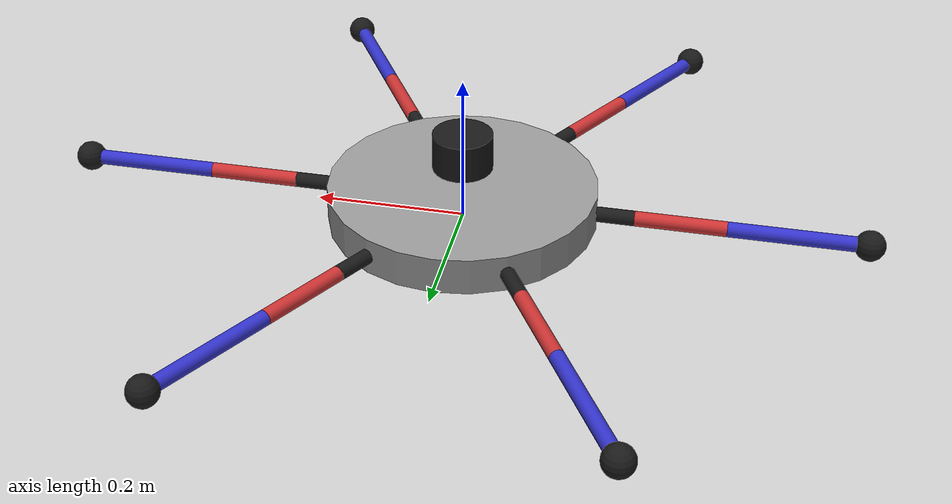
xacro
<?xml version="1.0"?>
<robot xmlns:xacro="http://www.ros.org/wiki/xacro" name="hexapod">

  <xacro:property name="base_radius" value="0.18"/>
  <xacro:property name="base_height" value="0.05"/>
  <xacro:property name="hip_length" value="0.05"/>
  <xacro:property name="femur_length" value="0.12"/>
  <xacro:property name="tibia_length" value="0.18"/>
  <xacro:property name="leg_radius" value="0.01"/>
  <xacro:property name="joint_lower_limit" value="-1.57"/>
  <xacro:property name="joint_upper_limit" value="1.57"/>

  <!-- Base Link -->
  <link name="base_link">
    <inertial>
      <origin xyz="0 0 0" rpy="0 0 0"/>
      <mass value="3.0"/>
      <inertia ixx="0.02" ixy="0.0" ixz="0.0" iyy="0.02" iyz="0.0" izz="0.02"/>
    </inertial>
    <visual>
      <origin xyz="0 0 ${base_height/2}" rpy="0 0 0"/>
      <geometry>
        <cylinder radius="${base_radius}" length="${base_height}"/>
      </geometry>
      <material name="gray">
        <color rgba="0.6 0.6 0.6 1.0"/>
      </material>
    </visual>
    <collision>
      <origin xyz="0 0 ${base_height/2}" rpy="0 0 0"/>
      <geometry>
        <cylinder radius="${base_radius}" length="${base_height}"/>
      </geometry>
    </collision>
  </link>

  <!-- IMU Sensor -->
  <link name="imu_link">
    <inertial>
      <mass value="0.001"/>
      <inertia ixx="1e-6" ixy="0" ixz="0" iyy="1e-6" iyz="0" izz="1e-6"/>
    </inertial>
  </link>

  <joint name="imu_joint" type="fixed">
    <origin xyz="0 0 0.07" rpy="0 0 0"/>
    <parent link="base_link"/>
    <child link="imu_link"/>
  </joint>

  <!-- LiDAR Sensor -->
  <link name="lidar_link">
    <inertial>
      <mass value="0.05"/>
      <inertia ixx="1e-4" ixy="0" ixz="0" iyy="1e-4" iyz="0" izz="1e-4"/>
    </inertial>
    <visual>
      <origin xyz="0 0 0" rpy="0 0 0"/>
      <geometry>
        <cylinder radius="0.04" length="0.05"/>
      </geometry>
      <material name="black">
        <color rgba="0.1 0.1 0.1 1.0"/>
      </material>
    </visual>
    <collision>
      <origin xyz="0 0 0" rpy="0 0 0"/>
      <geometry>
        <cylinder radius="0.04" length="0.05"/>
      </geometry>
    </collision>
  </link>

  <joint name="lidar_joint" type="fixed">
    <origin xyz="0 0 0.1" rpy="0 0 0"/>
    <parent link="base_link"/>
    <child link="lidar_link"/>
  </joint>

  <!-- LEG MACRO -->
  <xacro:macro name="leg" params="leg_name hx hy angle">

    <link name="${leg_name}_hip_link">
      <inertial>
        <origin xyz="${hip_length/2} 0 0" rpy="0 1.5708 0"/>
        <mass value="0.05"/>
        <inertia ixx="1e-4" ixy="0" ixz="0" iyy="1e-4" iyz="0" izz="1e-4"/>
      </inertial>
      <visual>
        <origin xyz="${hip_length/2} 0 0" rpy="0 1.5708 0"/>
        <geometry><cylinder radius="${leg_radius}" length="${hip_length}"/></geometry>
        <material name="black"><color rgba="0.1 0.1 0.1 1.0"/></material>
      </visual>
      <collision>
        <origin xyz="${hip_length/2} 0 0" rpy="0 1.5708 0"/>
        <geometry><cylinder radius="${leg_radius}" length="${hip_length}"/></geometry>
      </collision>
    </link>

    <joint name="${leg_name}_hip_joint" type="revolute">
      <origin xyz="${hx} ${hy} ${base_height/2}" rpy="0 0 ${angle}"/>
      <parent link="base_link"/>
      <child link="${leg_name}_hip_link"/>
      <axis xyz="0 0 1"/>
      <limit lower="${joint_lower_limit}" upper="${joint_upper_limit}" effort="10" velocity="4"/>
    </joint>

    <link name="${leg_name}_femur_link">
      <inertial>
        <origin xyz="${femur_length/2} 0 0" rpy="0 1.5708 0"/>
        <mass value="0.08"/>
        <inertia ixx="1e-4" ixy="0" ixz="0" iyy="1e-4" iyz="0" izz="1e-4"/>
      </inertial>
      <visual>
        <origin xyz="${femur_length/2} 0 0" rpy="0 1.5708 0"/>
        <geometry><cylinder radius="${leg_radius}" length="${femur_length}"/></geometry>
        <material name="red"><color rgba="0.8 0.2 0.2 1.0"/></material>
      </visual>
      <collision>
        <origin xyz="${femur_length/2} 0 0" rpy="0 1.5708 0"/>
        <geometry><cylinder radius="${leg_radius}" length="${femur_length}"/></geometry>
      </collision>
    </link>

    <joint name="${leg_name}_femur_joint" type="revolute">
      <origin xyz="${hip_length} 0 0" rpy="0 0 0"/>
      <parent link="${leg_name}_hip_link"/>
      <child link="${leg_name}_femur_link"/>
      <axis xyz="0 1 0"/>
      <limit lower="${joint_lower_limit}" upper="${joint_upper_limit}" effort="10" velocity="4"/>
    </joint>

    <link name="${leg_name}_tibia_link">
      <inertial>
        <origin xyz="${tibia_length/2} 0 0" rpy="0 1.5708 0"/>
        <mass value="0.06"/>
        <inertia ixx="1e-4" ixy="0" ixz="0" iyy="1e-4" iyz="0" izz="1e-4"/>
      </inertial>
      <visual>
        <origin xyz="${tibia_length/2} 0 0" rpy="0 1.5708 0"/>
        <geometry><cylinder radius="${leg_radius}" length="${tibia_length}"/></geometry>
        <material name="blue"><color rgba="0.2 0.2 0.8 1.0"/></material>
      </visual>
      <collision>
        <origin xyz="${tibia_length/2} 0 0" rpy="0 1.5708 0"/>
        <geometry><cylinder radius="${leg_radius}" length="${tibia_length}"/></geometry>
      </collision>
    </link>

    <joint name="${leg_name}_tibia_joint" type="revolute">
      <origin xyz="${femur_length} 0 0" rpy="0 0 0"/>
      <parent link="${leg_name}_femur_link"/>
      <child link="${leg_name}_tibia_link"/>
      <axis xyz="0 1 0"/>
      <limit lower="${joint_lower_limit}" upper="${joint_upper_limit}" effort="10" velocity="4"/>
    </joint>

    <link name="${leg_name}_foot">
      <inertial>
        <mass value="0.01"/>
        <inertia ixx="1e-6" ixy="0" ixz="0" iyy="1e-6" iyz="0" izz="1e-6"/>
      </inertial>
      <visual>
        <origin xyz="0 0 0" rpy="0 0 0"/>
        <geometry><sphere radius="0.02"/></geometry>
        <material name="black"><color rgba="0.1 0.1 0.1 1.0"/></material>
      </visual>
      <collision name="${leg_name}_foot_collision">
        <origin xyz="0 0 0" rpy="0 0 0"/>
        <geometry><sphere radius="0.02"/></geometry>
        <surface>
          <friction>
            <ode>
              <mu>1.0</mu> <mu2>1.0</mu2>
            </ode>
          </friction>
        </surface>
      </collision>
    </link>

    <joint name="${leg_name}_foot_joint" type="prismatic">
      <origin xyz="${tibia_length} 0 0" rpy="0 0 0"/>
      <parent link="${leg_name}_tibia_link"/>
      <child link="${leg_name}_foot"/>
      <axis xyz="1 0 0"/> <limit lower="-0.05" upper="0.0" effort="100" velocity="10"/>

      <dynamics damping="1.0" friction="0" spring_stiffness="1" spring_reference="0.0"/>
    </joint>

  </xacro:macro>

  <!-- CREATE 6 LEGS (60 degrees apart) -->
  <xacro:leg leg_name="leg_1" hx="${base_radius}" hy="0.0" angle="0"/>
  <xacro:leg leg_name="leg_2" hx="${base_radius*0.5}" hy="${base_radius*0.866}" angle="1.0472"/>
  <xacro:leg leg_name="leg_3" hx="${-base_radius*0.5}" hy="${base_radius*0.866}" angle="2.0944"/>
  <xacro:leg leg_name="leg_4" hx="${-base_radius}" hy="0.0" angle="3.14159"/>
  <xacro:leg leg_name="leg_5" hx="${-base_radius*0.5}" hy="${-base_radius*0.866}" angle="-2.0944"/>
  <xacro:leg leg_name="leg_6" hx="${base_radius*0.5}" hy="${-base_radius*0.866}" angle="-1.0472"/>

  <ros2_control name="HexapodSystem" type="system">
    <hardware>
      <plugin>gz_ros2_control/GazeboSimSystem</plugin>
    </hardware>

    <xacro:macro name="joint_control" params="leg_name">
      <joint name="${leg_name}_hip_joint">
        <command_interface name="position"/>
        <state_interface name="position"/>
        <state_interface name="velocity"/>
        <state_interface name="effort"/>
      </joint>
      <joint name="${leg_name}_femur_joint">
        <command_interface name="position"/>
        <state_interface name="position"/>
        <state_interface name="velocity"/>
        <state_interface name="effort"/>
      </joint>
      <joint name="${leg_name}_tibia_joint">
        <command_interface name="position"/>
        <state_interface name="position"/>
        <state_interface name="velocity"/>
        <state_interface name="effort"/>
      </joint>

      <joint name="${leg_name}_foot_joint">
        <state_interface name="position"/> <state_interface name="velocity"/>
      </joint>
    </xacro:macro>

    <xacro:joint_control leg_name="leg_1"/>
    <xacro:joint_control leg_name="leg_2"/>
    <xacro:joint_control leg_name="leg_3"/>
    <xacro:joint_control leg_name="leg_4"/>
    <xacro:joint_control leg_name="leg_5"/>
    <xacro:joint_control leg_name="leg_6"/>
  </ros2_control>

  <gazebo>
    <plugin filename="gz_ros2_control-system" name="gz_ros2_control::GazeboSimROS2ControlPlugin">
      <parameters>$(find hexapod_ws)/config/parameters.yaml</parameters>
    </plugin>
  </gazebo>

  <gazebo reference="imu_joint"><preserveFixedJoint>true</preserveFixedJoint></gazebo>
  <gazebo reference="lidar_joint"><preserveFixedJoint>true</preserveFixedJoint></gazebo>

  <gazebo reference="imu_link">
    <sensor name="imu_sensor" type="imu">
      <always_on>true</always_on>
      <update_rate>100</update_rate>
      <visualize>true</visualize>
      <topic>imu</topic>
      <gz_frame_id>imu_link</gz_frame_id>
      <imu/> </sensor>
  </gazebo>

  <gazebo reference="lidar_link">
    <sensor name="gpu_lidar" type="gpu_lidar">
      <always_on>true</always_on>
      <update_rate>10</update_rate>
      <visualize>true</visualize>
      <topic>scan</topic>
      <gz_frame_id>lidar_link</gz_frame_id>
      <lidar>
        <scan>
          <horizontal>
            <samples>360</samples>
            <resolution>1</resolution>
            <min_angle>-3.14159</min_angle>
            <max_angle>3.14159</max_angle>
          </horizontal>
        </scan>
        <range>
          <min>0.12</min>
          <max>10.0</max>
          <resolution>0.01</resolution>
        </range>
      </lidar>
    </sensor>
  </gazebo>
</robot>
